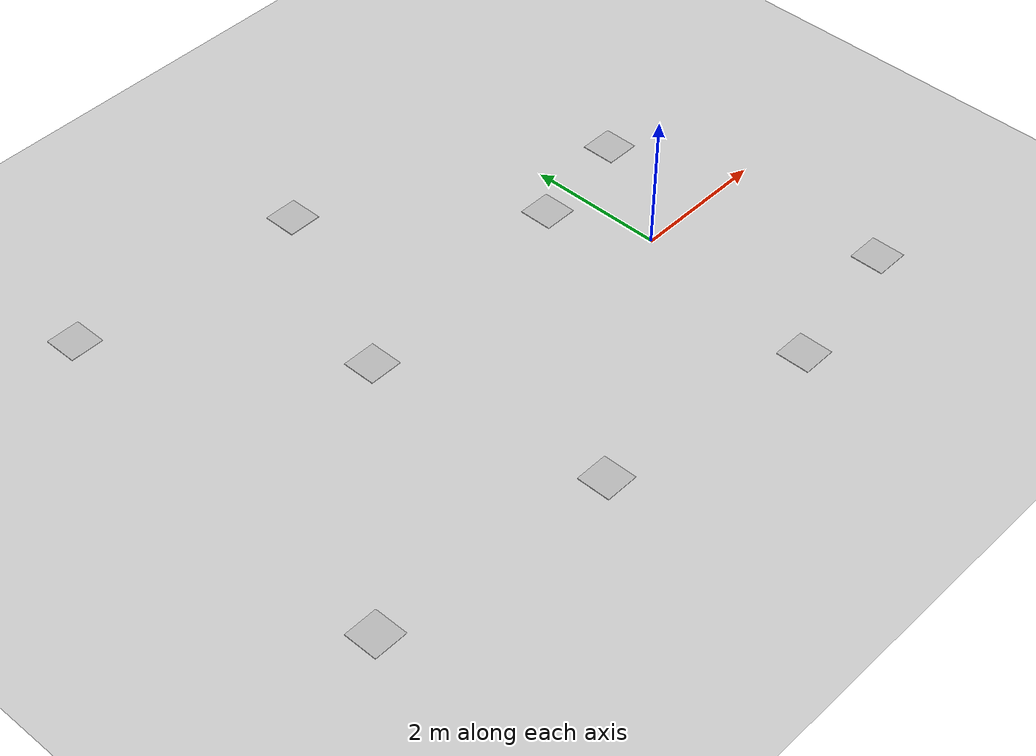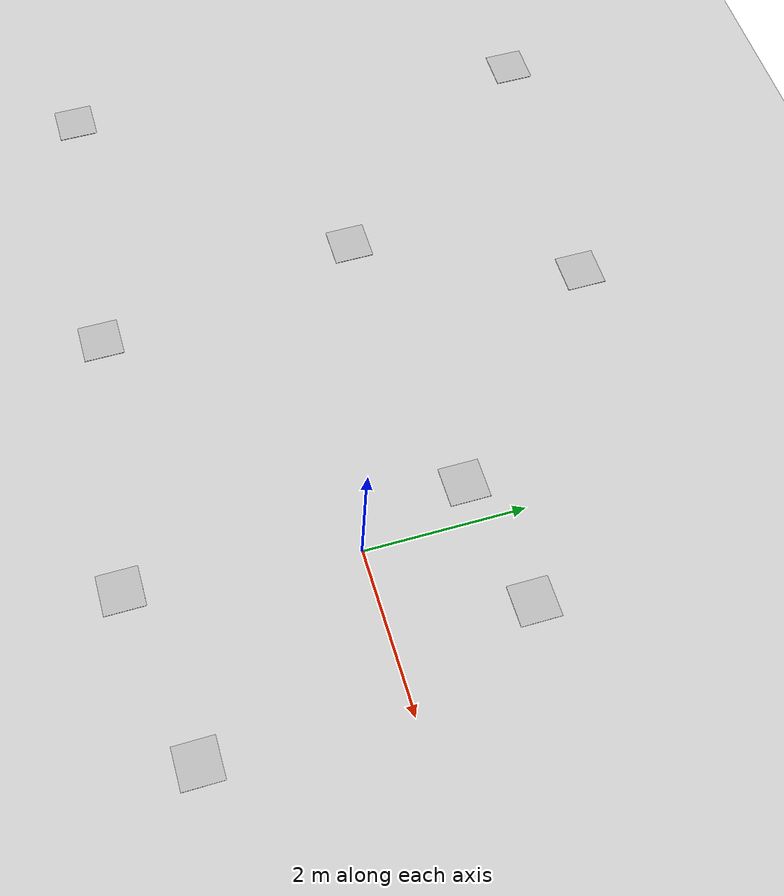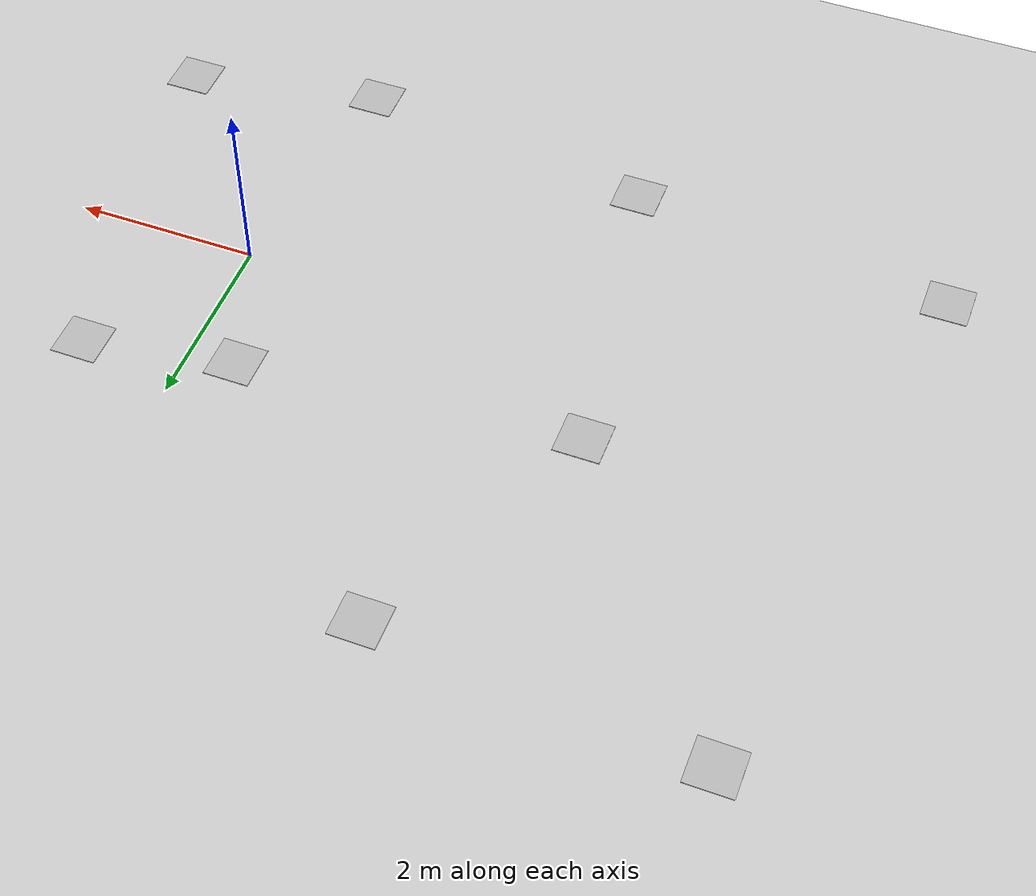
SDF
<sdf version="1.7">
 <world name="default">
  <model name="ground_plane">
   <static>1</static>
   <link name="link">
    <collision name="collision">
     <geometry><plane><normal>0 0 1</normal><size>5000 5000</size></plane></geometry>
     <surface><friction><ode><mu>1</mu><mu2>1</mu2></ode></friction></surface>
    </collision>
    <visual name="runway">
     <pose>0 0 0.005 0 -0 0</pose>
     <cast_shadows>0</cast_shadows>
     <geometry><plane><normal>0 0 1</normal><size>1829 45</size></plane></geometry>
     <material>
      <script><uri>file://media/materials/scripts/gazebo.material</uri><name>Gazebo/Runway</name></script>
     </material>
    </visual>
    <visual name="grass">
     <pose>0 0 -0.1 0 -0 0</pose>
     <cast_shadows>0</cast_shadows>
     <geometry><plane><normal>0 0 1</normal><size>5000 5000</size></plane></geometry>
     <material>
      <script><uri>file://media/materials/scripts/gazebo.material</uri><name>Gazebo/Grass</name></script>
     </material>
    </visual>
   </link>
  </model>
  <model name="circle5">
   <pose>-0.504882 1.41291 0.005 0 -0 0</pose>
   <link name="link">
    <collision name="collision"><geometry><box><size>0.5 0.5 0.01</size></box></geometry></collision>
    <visual name="visual">
     <geometry><box><size>0.5 0.5 0.01</size></box></geometry>
     <material>
      <script>
       <uri>model://circle5/materials/scripts</uri>
       <uri>model://circle5/materials/textures</uri>
       <name>circle5</name>
      </script>
     </material>
    </visual>
    <inertial>
     <inertia><ixx>1</ixx><ixy>0</ixy><ixz>0</ixz><iyy>1</iyy><iyz>0</iyz><izz>1</izz></inertia>
     <mass>1</mass>
    </inertial>
   </link>
  </model>
  <model name="cross4">
   <pose>-4.17857 1.07625 0.005 0 -0 -1e-06</pose>
   <link name="link">
    <collision name="collision"><geometry><box><size>0.5 0.5 0.01</size></box></geometry></collision>
    <visual name="visual">
     <geometry><box><size>0.5 0.5 0.01</size></box></geometry>
     <material>
      <script>
       <uri>model://cross4/materials/scripts</uri>
       <uri>model://cross4/materials/textures</uri>
       <name>cross4</name>
      </script>
     </material>
    </visual>
    <inertial>
     <inertia><ixx>1</ixx><ixy>0</ixy><ixz>0</ixz><iyy>1</iyy><iyz>0</iyz><izz>1</izz></inertia>
     <mass>1</mass>
    </inertial>
   </link>
  </model>
  <model name="hexagon1">
   <pose>-0.289592 -2.77949 0.005 0 -0 0</pose>
   <link name="link">
    <collision name="collision"><geometry><box><size>0.5 0.5 0.01</size></box></geometry></collision>
    <visual name="visual">
     <geometry><box><size>0.5 0.5 0.01</size></box></geometry>
     <material>
      <script>
       <uri>model://hexagon1/materials/scripts</uri>
       <uri>model://hexagon1/materials/textures</uri>
       <name>hexagon1</name>
      </script>
     </material>
    </visual>
    <inertial>
     <inertia><ixx>1</ixx><ixy>0</ixy><ixz>0</ixz><iyy>1</iyy><iyz>0</iyz><izz>1</izz></inertia>
     <mass>1</mass>
    </inertial>
   </link>
  </model>
  <model name="rectangle2">
   <pose>1.8325 -2.37732 0.005 0 -0 0</pose>
   <link name="link">
    <collision name="collision"><geometry><box><size>0.5 0.5 0.01</size></box></geometry></collision>
    <visual name="visual">
     <geometry><box><size>0.5 0.5 0.01</size></box></geometry>
     <material>
      <script>
       <uri>model://rectangle2/materials/scripts</uri>
       <uri>model://rectangle2/materials/textures</uri>
       <name>rectangle2</name>
      </script>
     </material>
    </visual>
    <inertial>
     <inertia><ixx>1</ixx><ixy>0</ixy><ixz>0</ixz><iyy>1</iyy><iyz>0</iyz><izz>1</izz></inertia>
     <mass>1</mass>
    </inertial>
   </link>
  </model>
  <model name="star3">
   <pose>-3.61213 -2.3478 0.005 0 -0 0</pose>
   <link name="link">
    <collision name="collision"><geometry><box><size>0.5 0.5 0.01</size></box></geometry></collision>
    <visual name="visual">
     <geometry><box><size>0.5 0.5 0.01</size></box></geometry>
     <material>
      <script>
       <uri>model://star3/materials/scripts</uri>
       <uri>model://star3/materials/textures</uri>
       <name>star3</name>
      </script>
     </material>
    </visual>
    <inertial>
     <inertia><ixx>1</ixx><ixy>0</ixy><ixz>0</ixz><iyy>1</iyy><iyz>0</iyz><izz>1</izz></inertia>
     <mass>1</mass>
    </inertial>
   </link>
  </model>
  <model name="semicircle7">
   <pose>-2.96169 3.83759 0.005 0 -0 0</pose>
   <link name="link">
    <collision name="collision"><geometry><box><size>0.5 0.5 0.01</size></box></geometry></collision>
    <visual name="visual">
     <geometry><box><size>0.5 0.5 0.01</size></box></geometry>
     <material>
      <script>
       <uri>model://semicircle7/materials/scripts</uri>
       <uri>model://semicircle7/materials/textures</uri>
       <name>semicircle7</name>
      </script>
     </material>
    </visual>
    <inertial>
     <inertia><ixx>1</ixx><ixy>0</ixy><ixz>0</ixz><iyy>1</iyy><iyz>0</iyz><izz>1</izz></inertia>
     <mass>1</mass>
    </inertial>
   </link>
  </model>
  <model name="hexagon5">
   <pose>1.10601 1.69802 0.005 0 -0 0</pose>
   <link name="link">
    <collision name="collision"><geometry><box><size>0.5 0.5 0.01</size></box></geometry></collision>
    <visual name="visual">
     <geometry><box><size>0.5 0.5 0.01</size></box></geometry>
     <material>
      <script>
       <uri>model://hexagon5/materials/scripts</uri>
       <uri>model://hexagon5/materials/textures</uri>
       <name>hexagon5</name>
      </script>
     </material>
    </visual>
    <inertial>
     <inertia><ixx>1</ixx><ixy>0</ixy><ixz>0</ixz><iyy>1</iyy><iyz>0</iyz><izz>1</izz></inertia>
     <mass>1</mass>
    </inertial>
   </link>
  </model>
  <model name="cross0">
   <pose>-7.16811 -1.99589 0.005 0 -0 0</pose>
   <link name="link">
    <collision name="collision"><geometry><box><size>0.5 0.5 0.01</size></box></geometry></collision>
    <visual name="visual">
     <geometry><box><size>0.5 0.5 0.01</size></box></geometry>
     <material>
      <script>
       <uri>model://cross0/materials/scripts</uri>
       <uri>model://cross0/materials/textures</uri>
       <name>cross0</name>
      </script>
     </material>
    </visual>
    <inertial>
     <inertia><ixx>1</ixx><ixy>0</ixy><ixz>0</ixz><iyy>1</iyy><iyz>0</iyz><izz>1</izz></inertia>
     <mass>1</mass>
    </inertial>
   </link>
  </model>
  <model name="trapezoid8">
   <pose>-6.49479 4.12684 0.005 0 -0 0</pose>
   <link name="link">
    <collision name="collision"><geometry><box><size>0.5 0.5 0.01</size></box></geometry></collision>
    <visual name="visual">
     <geometry><box><size>0.5 0.5 0.01</size></box></geometry>
     <material>
      <script>
       <uri>model://trapezoid8/materials/scripts</uri>
       <uri>model://trapezoid8/materials/textures</uri>
       <name>trapezoid8</name>
      </script>
     </material>
    </visual>
    <inertial>
     <inertia><ixx>1</ixx><ixy>0</ixy><ixz>0</ixz><iyy>1</iyy><iyz>0</iyz><izz>1</izz></inertia>
     <mass>1</mass>
    </inertial>
   </link>
  </model>
 </world>
</sdf>
